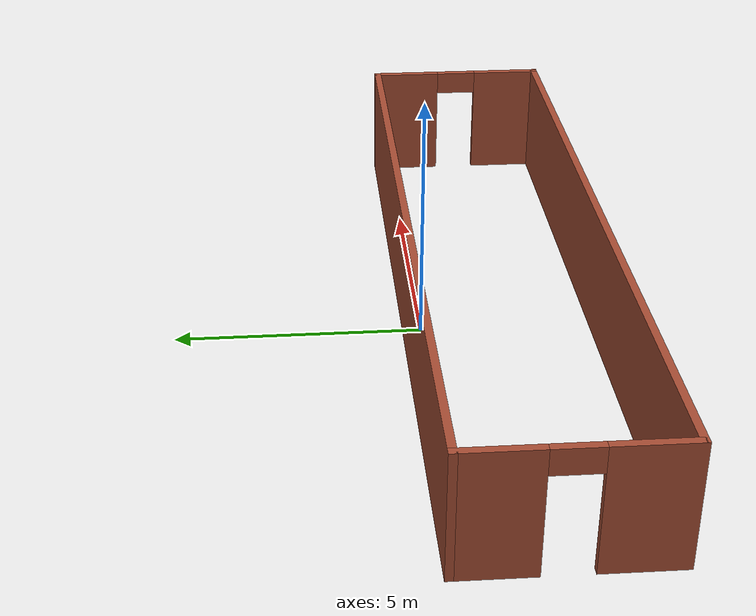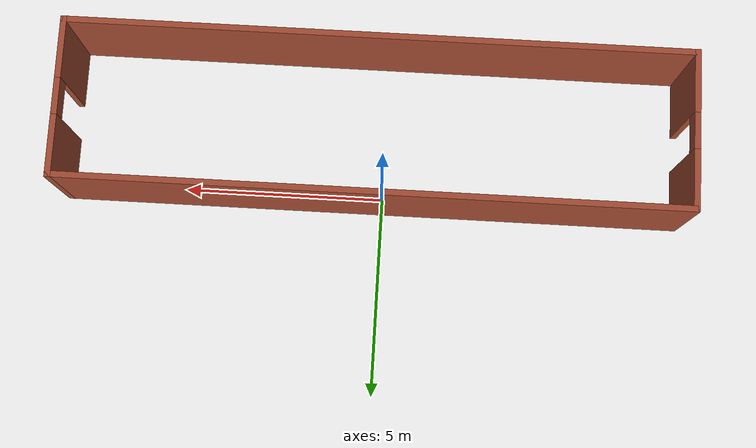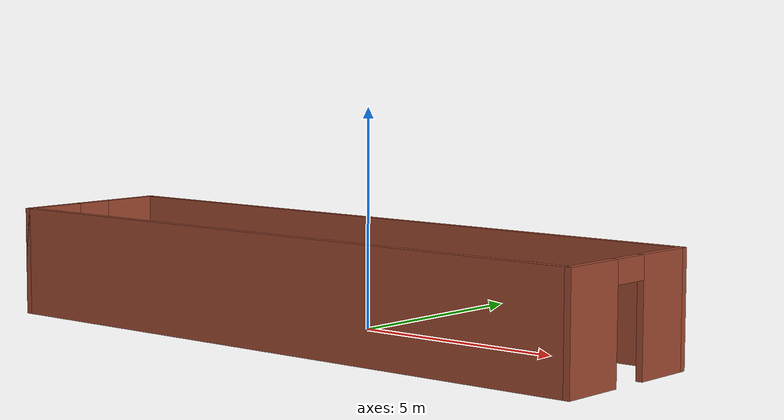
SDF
<?xml version='1.0'?>
<sdf version='1.6'>
  <model name='Hallway'>
    <pose frame=''>0.24 -1.62 0 0 -0 0</pose>
    <link name='Wall_5'>
      <collision name='Wall_5_Collision'>
        <geometry>
          <box>
            <size>15.5 0.15 2.5</size>
          </box>
        </geometry>
        <pose frame=''>0 0 1.25 0 -0 0</pose>
      </collision>
      <visual name='Wall_5_Visual'>
        <pose frame=''>0 0 1.25 0 -0 0</pose>
        <geometry>
          <box>
            <size>15.5 0.15 2.5</size>
          </box>
        </geometry>
        <material>
          <script>
            <uri>file://media/materials/scripts/gazebo.material</uri>
            <name>Gazebo/Bricks</name>
          </script>
          <ambient>0.996078 0.47451 0.0196078 1</ambient>
        </material>
        <meta>
          <layer>0</layer>
        </meta>
      </visual>
      <pose frame=''>-0 -1.925 0 0 -0 0</pose>
    </link>
    <link name='Wall_6'>
      <pose frame=''>7.675 0 0 0 -0 1.5708</pose>
      <visual name='Wall_6_Visual_0'>
        <pose frame=''>-1.22208 0 1.25 0 -0 0</pose>
        <geometry>
          <box>
            <size>1.55585 0.15 2.5</size>
          </box>
        </geometry>
        <material>
          <script>
            <uri>file://media/materials/scripts/gazebo.material</uri>
            <name>Gazebo/Bricks</name>
          </script>
          <ambient>0.996078 0.47451 0.0196078 1</ambient>
        </material>
        <meta>
          <layer>0</layer>
        </meta>
      </visual>
      <collision name='Wall_6_Collision_0'>
        <geometry>
          <box>
            <size>1.55585 0.15 2.5</size>
          </box>
        </geometry>
        <pose frame=''>-1.22208 0 1.25 0 -0 0</pose>
      </collision>
      <visual name='Wall_6_Visual_1'>
        <pose frame=''>1.22792 0 1.25 0 -0 0</pose>
        <geometry>
          <box>
            <size>1.54415 0.15 2.5</size>
          </box>
        </geometry>
        <material>
          <script>
            <uri>file://media/materials/scripts/gazebo.material</uri>
            <name>Gazebo/Bricks</name>
          </script>
          <ambient>0.996078 0.47451 0.0196078 1</ambient>
        </material>
        <meta>
          <layer>0</layer>
        </meta>
      </visual>
      <collision name='Wall_6_Collision_1'>
        <geometry>
          <box>
            <size>1.54415 0.15 2.5</size>
          </box>
        </geometry>
        <pose frame=''>1.22792 0 1.25 0 -0 0</pose>
      </collision>
      <visual name='Wall_6_Visual_2'>
        <pose frame=''>0.00585 0 2.25 0 -0 0</pose>
        <geometry>
          <box>
            <size>0.9 0.15 0.5</size>
          </box>
        </geometry>
        <material>
          <script>
            <uri>file://media/materials/scripts/gazebo.material</uri>
            <name>Gazebo/Bricks</name>
          </script>
          <ambient>0.996078 0.47451 0.0196078 1</ambient>
        </material>
        <meta>
          <layer>0</layer>
        </meta>
      </visual>
      <collision name='Wall_6_Collision_2'>
        <geometry>
          <box>
            <size>0.9 0.15 0.5</size>
          </box>
        </geometry>
        <pose frame=''>0.00585 0 2.25 0 -0 0</pose>
      </collision>
    </link>
    <link name='Wall_7'>
      <collision name='Wall_7_Collision'>
        <geometry>
          <box>
            <size>15.5 0.15 2.5</size>
          </box>
        </geometry>
        <pose frame=''>0 0 1.25 0 -0 0</pose>
      </collision>
      <visual name='Wall_7_Visual'>
        <pose frame=''>0 0 1.25 0 -0 0</pose>
        <geometry>
          <box>
            <size>15.5 0.15 2.5</size>
          </box>
        </geometry>
        <material>
          <script>
            <uri>file://media/materials/scripts/gazebo.material</uri>
            <name>Gazebo/Bricks</name>
          </script>
          <ambient>0.996078 0.47451 0.0196078 1</ambient>
        </material>
        <meta>
          <layer>0</layer>
        </meta>
      </visual>
      <pose frame=''>-0 1.925 0 0 -0 3.14159</pose>
    </link>
    <link name='Wall_8'>
      <pose frame=''>-7.675 0 0 0 -0 -1.5708</pose>
      <visual name='Wall_8_Visual_0'>
        <pose frame=''>-1.23236 0 1.25 0 -0 0</pose>
        <geometry>
          <box>
            <size>1.53528 0.15 2.5</size>
          </box>
        </geometry>
        <material>
          <script>
            <uri>file://media/materials/scripts/gazebo.material</uri>
            <name>Gazebo/Bricks</name>
          </script>
          <ambient>0.996078 0.47451 0.0196078 1</ambient>
        </material>
        <meta>
          <layer>0</layer>
        </meta>
      </visual>
      <collision name='Wall_8_Collision_0'>
        <geometry>
          <box>
            <size>1.53528 0.15 2.5</size>
          </box>
        </geometry>
        <pose frame=''>-1.23236 0 1.25 0 -0 0</pose>
      </collision>
      <visual name='Wall_8_Visual_1'>
        <pose frame=''>1.21764 0 1.25 0 -0 0</pose>
        <geometry>
          <box>
            <size>1.56472 0.15 2.5</size>
          </box>
        </geometry>
        <material>
          <script>
            <uri>file://media/materials/scripts/gazebo.material</uri>
            <name>Gazebo/Bricks</name>
          </script>
          <ambient>0.996078 0.47451 0.0196078 1</ambient>
        </material>
        <meta>
          <layer>0</layer>
        </meta>
      </visual>
      <collision name='Wall_8_Collision_1'>
        <geometry>
          <box>
            <size>1.56472 0.15 2.5</size>
          </box>
        </geometry>
        <pose frame=''>1.21764 0 1.25 0 -0 0</pose>
      </collision>
      <visual name='Wall_8_Visual_2'>
        <pose frame=''>-0.01472 0 2.25 0 -0 0</pose>
        <geometry>
          <box>
            <size>0.9 0.15 0.5</size>
          </box>
        </geometry>
        <material>
          <script>
            <uri>file://media/materials/scripts/gazebo.material</uri>
            <name>Gazebo/Bricks</name>
          </script>
          <ambient>0.996078 0.47451 0.0196078 1</ambient>
        </material>
        <meta>
          <layer>0</layer>
        </meta>
      </visual>
      <collision name='Wall_8_Collision_2'>
        <geometry>
          <box>
            <size>0.9 0.15 0.5</size>
          </box>
        </geometry>
        <pose frame=''>-0.01472 0 2.25 0 -0 0</pose>
      </collision>
    </link>
    <static>1</static>
  </model>
</sdf>
